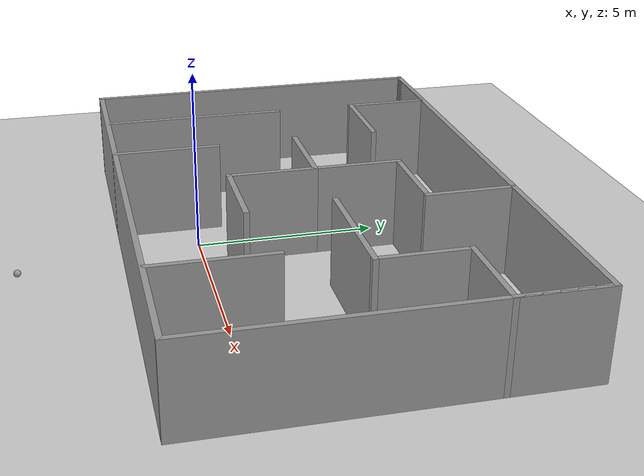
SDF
<sdf version="1.6">
 <world name="default">
  <model name="ground_plane">
   <static>1</static>
   <link name="link">
    <collision name="collision">
     <geometry><plane><normal>0 0 1</normal><size>100 100</size></plane></geometry>
     <surface><friction><ode><mu>100</mu><mu2>50</mu2></ode></friction></surface>
    </collision>
    <visual name="visual">
     <cast_shadows>0</cast_shadows>
     <geometry><plane><normal>0 0 1</normal><size>100 100</size></plane></geometry>
     <material>
      <script><uri>file://media/materials/scripts/gazebo.material</uri><name>Gazebo/Grey</name></script>
     </material>
    </visual>
   </link>
  </model>
  <light name="sun" type="directional">
   <pose>0 0 10 0 -0 0</pose>
   <diffuse>0.8 0.8 0.8 1</diffuse>
   <specular>0.2 0.2 0.2 1</specular>
   <attenuation>
    <range>1000</range>
    <constant>0.9</constant>
    <linear>0.01</linear>
    <quadratic>0.001</quadratic>
   </attenuation>
   <direction>-0.5 0.1 -0.9</direction>
  </light>
  <gravity>0 0 -9.8</gravity>
  <magnetic_field>6e-06 2.3e-05 -4.2e-05</magnetic_field>
  <atmosphere type="adiabatic"/>
  <physics name="default_physics" default="0" type="ode">
   <max_step_size>0.001</max_step_size>
   <real_time_factor>1</real_time_factor>
   <real_time_update_rate>1000</real_time_update_rate>
  </physics>
  <scene><ambient>0.4 0.4 0.4 1</ambient><background>0.7 0.7 0.7 1</background><shadows>1</shadows></scene>
  <audio><device>default</device></audio>
  <spherical_coordinates>
   <surface_model>EARTH_WGS84</surface_model>
   <latitude_deg>0</latitude_deg>
   <longitude_deg>0</longitude_deg>
   <elevation>0</elevation>
   <heading_deg>0</heading_deg>
  </spherical_coordinates>
  <model name="my_ball">
   <link name="link_0">
    <inertial>
     <mass>1</mass>
     <inertia><ixx>0.1</ixx><ixy>0</ixy><ixz>0</ixz><iyy>0.1</iyy><iyz>0</iyz><izz>0.1</izz></inertia>
    </inertial>
    <visual name="visual">
     <geometry><sphere><radius>0.1</radius></sphere></geometry>
     <material>
      <lighting>1</lighting>
      <script><uri>file://media/materials/scripts/gazebo.material</uri><name>Gazebo/Grey</name></script>
      <shader type="vertex"><normal_map>__default__</normal_map></shader>
      <ambient>1 1 1 1</ambient>
      <diffuse>1 1 1 1</diffuse>
      <specular>1 1 1 1</specular>
      <emissive>1 1 1 1</emissive>
     </material>
    </visual>
    <collision name="collision">
     <geometry><sphere><radius>0.1</radius></sphere></geometry>
     <surface>
      <friction>
       <ode><mu>1</mu><mu2>1</mu2><fdir1>0 0 0</fdir1><slip1>0</slip1><slip2>0</slip2></ode>
       <torsional>
        <coefficient>1</coefficient>
        <patch_radius>0</patch_radius>
        <surface_radius>0</surface_radius>
        <use_patch_radius>1</use_patch_radius>
        <ode><slip>0</slip></ode>
       </torsional>
      </friction>
      <bounce><restitution_coefficient>0</restitution_coefficient><threshold>1e+06</threshold></bounce>
      <contact>
       <collide_without_contact>0</collide_without_contact>
       <collide_without_contact_bitmask>1</collide_without_contact_bitmask>
       <collide_bitmask>1</collide_bitmask>
       <ode>
        <soft_cfm>0</soft_cfm>
        <soft_erp>0.2</soft_erp>
        <kp>1e+13</kp>
        <kd>1</kd>
        <max_vel>0.01</max_vel>
        <min_depth>0</min_depth>
       </ode>
       <bullet>
        <split_impulse>1</split_impulse>
        <split_impulse_penetration_threshold>-0.01</split_impulse_penetration_threshold>
        <soft_cfm>0</soft_cfm>
        <soft_erp>0.2</soft_erp>
        <kp>1e+13</kp>
        <kd>1</kd>
       </bullet>
      </contact>
     </surface>
    </collision>
   </link>
   <static>0</static>
   <pose>0.800169 -4.97287 0.1 0 -0 0</pose>
  </model>
  <model name="big_bldg">
   <pose>1.44713 2.84638 0 0 -0 0</pose>
   <link name="Wall_0">
    <collision name="Wall_0_Collision">
     <geometry><box><size>10 0.15 2.5</size></box></geometry>
     <pose>0 0 1.25 0 -0 0</pose>
    </collision>
    <visual name="Wall_0_Visual">
     <pose>0 0 1.25 0 -0 0</pose>
     <geometry><box><size>10 0.15 2.5</size></box></geometry>
     <material>
      <script><uri>file://media/materials/scripts/gazebo.material</uri><name>Gazebo/Grey</name></script>
      <ambient>1 1 1 1</ambient>
     </material>
     <meta><layer>0</layer></meta>
    </visual>
    <pose>-7.425 7.5e-05 0 0 -0 1.5708</pose>
   </link>
   <link name="Wall_1">
    <collision name="Wall_1_Collision">
     <geometry><box><size>15 0.15 2.5</size></box></geometry>
     <pose>0 0 1.25 0 -0 0</pose>
    </collision>
    <visual name="Wall_1_Visual">
     <pose>0 0 1.25 0 -0 0</pose>
     <geometry><box><size>15 0.15 2.5</size></box></geometry>
     <material>
      <script><uri>file://media/materials/scripts/gazebo.material</uri><name>Gazebo/Grey</name></script>
      <ambient>1 1 1 1</ambient>
     </material>
     <meta><layer>0</layer></meta>
    </visual>
    <pose>-0 4.92507 0 0 -0 0</pose>
   </link>
   <link name="Wall_11">
    <collision name="Wall_11_Collision">
     <geometry><box><size>5.25 0.15 2.5</size></box></geometry>
     <pose>0 0 1.25 0 -0 0</pose>
    </collision>
    <visual name="Wall_11_Visual">
     <pose>0 0 1.25 0 -0 0</pose>
     <geometry><box><size>5.25 0.15 2.5</size></box></geometry>
     <material>
      <script><uri>file://media/materials/scripts/gazebo.material</uri><name>Gazebo/Grey</name></script>
      <ambient>1 1 1 1</ambient>
     </material>
     <meta><layer>0</layer></meta>
    </visual>
    <pose>-5.075 -2.32492 0 0 -0 -1.5708</pose>
   </link>
   <link name="Wall_17">
    <collision name="Wall_17_Collision">
     <geometry><box><size>2.5 0.15 2.5</size></box></geometry>
     <pose>0 0 1.25 0 -0 0</pose>
    </collision>
    <visual name="Wall_17_Visual">
     <pose>0 0 1.25 0 -0 0</pose>
     <geometry><box><size>2.5 0.15 2.5</size></box></geometry>
     <material>
      <script><uri>file://media/materials/scripts/gazebo.material</uri><name>Gazebo/Grey</name></script>
      <ambient>1 1 1 1</ambient>
     </material>
     <meta><layer>0</layer></meta>
    </visual>
    <pose>-1.55 0.225075 0 0 -0 0</pose>
   </link>
   <link name="Wall_18">
    <collision name="Wall_18_Collision">
     <geometry><box><size>2.5 0.15 2.5</size></box></geometry>
     <pose>0 0 1.25 0 -0 0</pose>
    </collision>
    <visual name="Wall_18_Visual">
     <pose>0 0 1.25 0 -0 0</pose>
     <geometry><box><size>2.5 0.15 2.5</size></box></geometry>
     <material>
      <script><uri>file://media/materials/scripts/gazebo.material</uri><name>Gazebo/Grey</name></script>
      <ambient>1 1 1 1</ambient>
     </material>
     <meta><layer>0</layer></meta>
    </visual>
    <pose>-0.375 -0.949925 0 0 -0 -1.5708</pose>
   </link>
   <link name="Wall_19">
    <collision name="Wall_19_Collision">
     <geometry><box><size>2.5 0.15 2.5</size></box></geometry>
     <pose>0 0 1.25 0 -0 0</pose>
    </collision>
    <visual name="Wall_19_Visual">
     <pose>0 0 1.25 0 -0 0</pose>
     <geometry><box><size>2.5 0.15 2.5</size></box></geometry>
     <material>
      <script><uri>file://media/materials/scripts/gazebo.material</uri><name>Gazebo/Grey</name></script>
      <ambient>1 1 1 1</ambient>
     </material>
     <meta><layer>0</layer></meta>
    </visual>
    <pose>0.8 -2.12493 0 0 -0 0</pose>
   </link>
   <link name="Wall_23">
    <collision name="Wall_23_Collision">
     <geometry><box><size>3.25 0.15 2.5</size></box></geometry>
     <pose>0 0 1.25 0 -0 0</pose>
    </collision>
    <visual name="Wall_23_Visual">
     <pose>0 0 1.25 0 -0 0</pose>
     <geometry><box><size>3.25 0.15 2.5</size></box></geometry>
     <material>
      <script><uri>file://media/materials/scripts/gazebo.material</uri><name>Gazebo/Grey</name></script>
      <ambient>1 1 1 1</ambient>
     </material>
     <meta><layer>0</layer></meta>
    </visual>
    <pose>4.325 -3.32492 0 0 -0 -1.5708</pose>
   </link>
   <link name="Wall_25">
    <collision name="Wall_25_Collision">
     <geometry><box><size>2.5 0.15 2.5</size></box></geometry>
     <pose>0 0 1.25 0 -0 0</pose>
    </collision>
    <visual name="Wall_25_Visual">
     <pose>0 0 1.25 0 -0 0</pose>
     <geometry><box><size>2.5 0.15 2.5</size></box></geometry>
     <material>
      <script><uri>file://media/materials/scripts/gazebo.material</uri><name>Gazebo/Grey</name></script>
      <ambient>1 1 1 1</ambient>
     </material>
     <meta><layer>0</layer></meta>
    </visual>
    <pose>-0.375 1.40007 0 0 -0 1.5708</pose>
   </link>
   <link name="Wall_26">
    <collision name="Wall_26_Collision">
     <geometry><box><size>2.5 0.15 2.5</size></box></geometry>
     <pose>0 0 1.25 0 -0 0</pose>
    </collision>
    <visual name="Wall_26_Visual">
     <pose>0 0 1.25 0 -0 0</pose>
     <geometry><box><size>2.5 0.15 2.5</size></box></geometry>
     <material>
      <script><uri>file://media/materials/scripts/gazebo.material</uri><name>Gazebo/Grey</name></script>
      <ambient>1 1 1 1</ambient>
     </material>
     <meta><layer>0</layer></meta>
    </visual>
    <pose>0.8 2.57508 0 0 -0 0</pose>
   </link>
   <link name="Wall_27">
    <collision name="Wall_27_Collision">
     <geometry><box><size>2.5 0.15 2.5</size></box></geometry>
     <pose>0 0 1.25 0 -0 0</pose>
    </collision>
    <visual name="Wall_27_Visual">
     <pose>0 0 1.25 0 -0 0</pose>
     <geometry><box><size>2.5 0.15 2.5</size></box></geometry>
     <material>
      <script><uri>file://media/materials/scripts/gazebo.material</uri><name>Gazebo/Grey</name></script>
      <ambient>1 1 1 1</ambient>
     </material>
     <meta><layer>0</layer></meta>
    </visual>
    <pose>1.975 3.75007 0 0 -0 1.5708</pose>
   </link>
   <link name="Wall_29">
    <collision name="Wall_29_Collision">
     <geometry><box><size>2.5 0.15 2.5</size></box></geometry>
     <pose>0 0 1.25 0 -0 0</pose>
    </collision>
    <visual name="Wall_29_Visual">
     <pose>0 0 1.25 0 -0 0</pose>
     <geometry><box><size>2.5 0.15 2.5</size></box></geometry>
     <material>
      <script><uri>file://media/materials/scripts/gazebo.material</uri><name>Gazebo/Grey</name></script>
      <ambient>1 1 1 1</ambient>
     </material>
     <meta><layer>0</layer></meta>
    </visual>
    <pose>7.425 3.75007 0 0 -0 -1.5708</pose>
   </link>
   <link name="Wall_3">
    <collision name="Wall_3_Collision">
     <geometry><box><size>15 0.15 2.5</size></box></geometry>
     <pose>0 0 1.25 0 -0 0</pose>
    </collision>
    <visual name="Wall_3_Visual">
     <pose>0 0 1.25 0 -0 0</pose>
     <geometry><box><size>15 0.15 2.5</size></box></geometry>
     <material>
      <script><uri>file://media/materials/scripts/gazebo.material</uri><name>Gazebo/Grey</name></script>
      <ambient>1 1 1 1</ambient>
     </material>
     <meta><layer>0</layer></meta>
    </visual>
    <pose>-0 -4.92492 0 0 -0 0</pose>
   </link>
   <link name="Wall_30">
    <collision name="Wall_30_Collision">
     <geometry><box><size>2.5 0.15 2.5</size></box></geometry>
     <pose>0 0 1.25 0 -0 0</pose>
    </collision>
    <visual name="Wall_30_Visual">
     <pose>0 0 1.25 0 -0 0</pose>
     <geometry><box><size>2.5 0.15 2.5</size></box></geometry>
     <material>
      <script><uri>file://media/materials/scripts/gazebo.material</uri><name>Gazebo/Grey</name></script>
      <ambient>1 1 1 1</ambient>
     </material>
     <meta><layer>0</layer></meta>
    </visual>
    <pose>6.25 2.57508 0 0 -0 3.14159</pose>
   </link>
   <link name="Wall_31">
    <collision name="Wall_31_Collision">
     <geometry><box><size>2.5 0.15 2.5</size></box></geometry>
     <pose>0 0 1.25 0 -0 0</pose>
    </collision>
    <visual name="Wall_31_Visual">
     <pose>0 0 1.25 0 -0 0</pose>
     <geometry><box><size>2.5 0.15 2.5</size></box></geometry>
     <material>
      <script><uri>file://media/materials/scripts/gazebo.material</uri><name>Gazebo/Grey</name></script>
      <ambient>1 1 1 1</ambient>
     </material>
     <meta><layer>0</layer></meta>
    </visual>
    <pose>5.075 1.40007 0 0 -0 -1.5708</pose>
   </link>
   <link name="Wall_32">
    <collision name="Wall_32_Collision">
     <geometry><box><size>3.5 0.15 2.5</size></box></geometry>
     <pose>0 0 1.25 0 -0 0</pose>
    </collision>
    <visual name="Wall_32_Visual">
     <pose>0 0 1.25 0 -0 0</pose>
     <geometry><box><size>3.5 0.15 2.5</size></box></geometry>
     <material>
      <script><uri>file://media/materials/scripts/gazebo.material</uri><name>Gazebo/Grey</name></script>
      <ambient>1 1 1 1</ambient>
     </material>
     <meta><layer>0</layer></meta>
    </visual>
    <pose>3.4 0.225075 0 0 -0 3.14159</pose>
   </link>
   <link name="Wall_34">
    <collision name="Wall_34_Collision">
     <geometry><box><size>3 0.15 2.5</size></box></geometry>
     <pose>0 0 1.25 0 -0 0</pose>
    </collision>
    <visual name="Wall_34_Visual">
     <pose>0 0 1.25 0 -0 0</pose>
     <geometry><box><size>3 0.15 2.5</size></box></geometry>
     <material>
      <script><uri>file://media/materials/scripts/gazebo.material</uri><name>Gazebo/Grey</name></script>
      <ambient>1 1 1 1</ambient>
     </material>
     <meta><layer>0</layer></meta>
    </visual>
    <pose>-2.58126 -3.50008 0 0 -0 -1.5708</pose>
   </link>
   <link name="Wall_4">
    <collision name="Wall_4_Collision">
     <geometry><box><size>10 0.15 2.5</size></box></geometry>
     <pose>0 0 1.25 0 -0 0</pose>
    </collision>
    <visual name="Wall_4_Visual">
     <pose>0 0 1.25 0 -0 0</pose>
     <geometry><box><size>10 0.15 2.5</size></box></geometry>
     <material>
      <script><uri>file://media/materials/scripts/gazebo.material</uri><name>Gazebo/Grey</name></script>
      <ambient>1 1 1 1</ambient>
     </material>
     <meta><layer>0</layer></meta>
    </visual>
    <pose>7.425 7.5e-05 0 0 -0 1.5708</pose>
   </link>
   <link name="Wall_6">
    <collision name="Wall_6_Collision">
     <geometry><box><size>2.5 0.15 2.5</size></box></geometry>
     <pose>0 0 1.25 0 -0 0</pose>
    </collision>
    <visual name="Wall_6_Visual">
     <pose>0 0 1.25 0 -0 0</pose>
     <geometry><box><size>2.5 0.15 2.5</size></box></geometry>
     <material>
      <script><uri>file://media/materials/scripts/gazebo.material</uri><name>Gazebo/Grey</name></script>
      <ambient>1 1 1 1</ambient>
     </material>
     <meta><layer>0</layer></meta>
    </visual>
    <pose>-6.25 4.92507 0 0 -0 0</pose>
   </link>
   <link name="Wall_7">
    <collision name="Wall_7_Collision">
     <geometry><box><size>2.5 0.15 2.5</size></box></geometry>
     <pose>0 0 1.25 0 -0 0</pose>
    </collision>
    <visual name="Wall_7_Visual">
     <pose>0 0 1.25 0 -0 0</pose>
     <geometry><box><size>2.5 0.15 2.5</size></box></geometry>
     <material>
      <script><uri>file://media/materials/scripts/gazebo.material</uri><name>Gazebo/Grey</name></script>
      <ambient>1 1 1 1</ambient>
     </material>
     <meta><layer>0</layer></meta>
    </visual>
    <pose>-5.075 3.75007 0 0 -0 -1.5708</pose>
   </link>
   <link name="Wall_8">
    <collision name="Wall_8_Collision">
     <geometry><box><size>2.5 0.15 2.5</size></box></geometry>
     <pose>0 0 1.25 0 -0 0</pose>
    </collision>
    <visual name="Wall_8_Visual">
     <pose>0 0 1.25 0 -0 0</pose>
     <geometry><box><size>2.5 0.15 2.5</size></box></geometry>
     <material>
      <script><uri>file://media/materials/scripts/gazebo.material</uri><name>Gazebo/Grey</name></script>
      <ambient>1 1 1 1</ambient>
     </material>
     <meta><layer>0</layer></meta>
    </visual>
    <pose>-3.9 2.57508 0 0 -0 0</pose>
   </link>
   <static>1</static>
  </model>
 </world>
</sdf>
